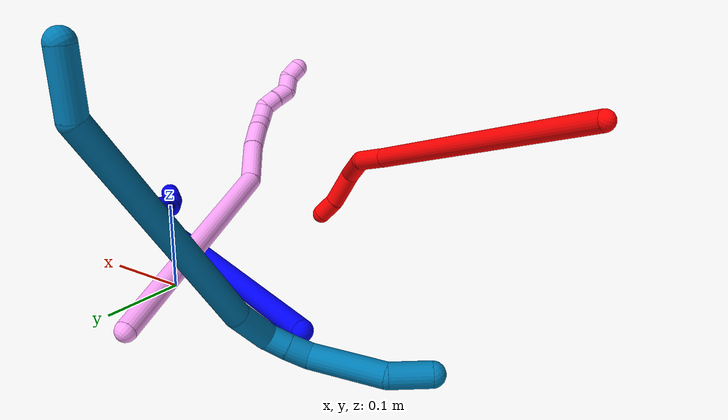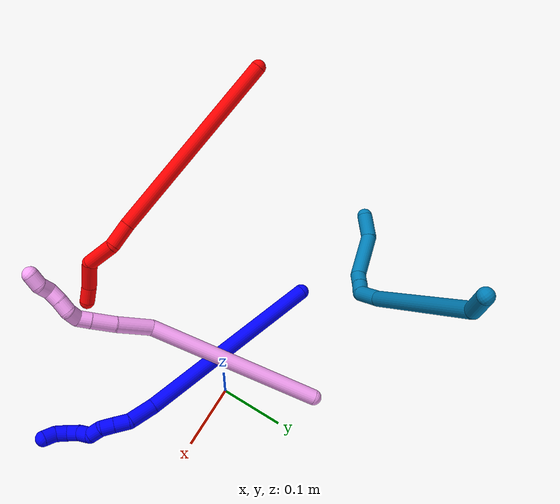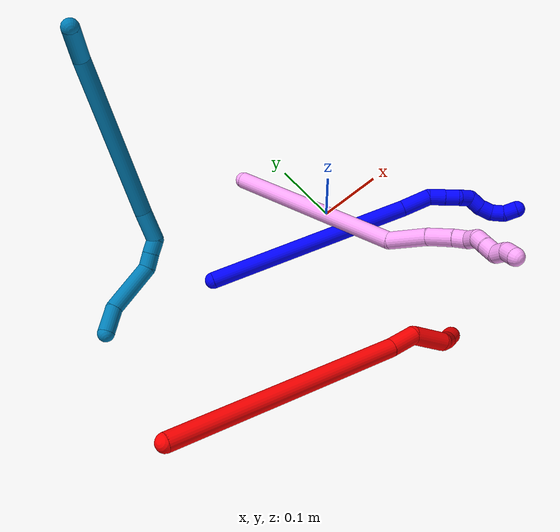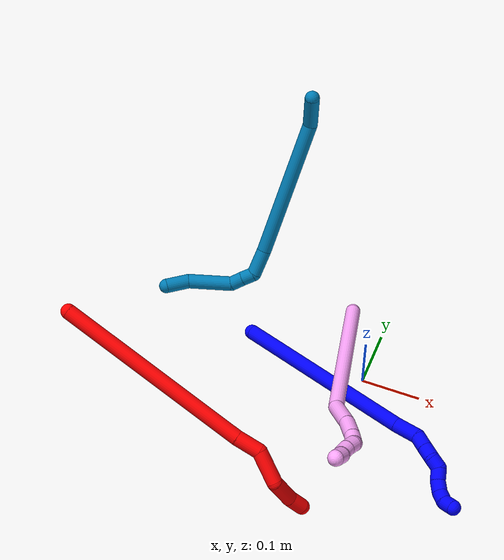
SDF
<sdf version="1.7">
 <world name="default">
  <model name="1">
   <static>0</static>
   <link name="1">
    <collision name="collision-cylinder-e_1_1_4">
     <pose>0.152518 -0.024412 0.013199 1.07513 1.39081 0.923204</pose>
     <geometry><cylinder><radius>0.0125</radius><length>0.310044</length></cylinder></geometry>
     <surface>
      <friction><ode><mu>1.16</mu><mu2>1.16</mu2><slip1>0</slip1><slip2>0</slip2></ode></friction>
      <contact><ode><kp>1e+06</kp><kd>1</kd><max_vel>0</max_vel><min_depth>0.001</min_depth></ode></contact>
     </surface>
    </collision>
    <visual name="visual-cylinder-e_1_1_4">
     <pose>0.152518 -0.024412 0.013199 1.07513 1.39081 0.923204</pose>
     <geometry><cylinder><radius>0.0125</radius><length>0.310044</length></cylinder></geometry>
     <material><ambient>0 0 1 1</ambient></material>
    </visual>
    <collision name="collision-cylinder-e_2_4_5">
     <pose>0.326845 -0.048258 0.029204 -0.19883 1.4403 -0.174573</pose>
     <geometry><cylinder><radius>0.0125</radius><length>0.043993</length></cylinder></geometry>
     <surface>
      <friction><ode><mu>1.16</mu><mu2>1.16</mu2><slip1>0</slip1><slip2>0</slip2></ode></friction>
      <contact><ode><kp>1e+06</kp><kd>1</kd><max_vel>0</max_vel><min_depth>0.001</min_depth></ode></contact>
     </surface>
    </collision>
    <visual name="visual-cylinder-e_2_4_5">
     <pose>0.326845 -0.048258 0.029204 -0.19883 1.4403 -0.174573</pose>
     <geometry><cylinder><radius>0.0125</radius><length>0.043993</length></cylinder></geometry>
     <material><ambient>0 0 1 1</ambient></material>
    </visual>
    <collision name="collision-cylinder-e_3_5_6">
     <pose>0.358941 -0.049687 0.03807 0.317903 1.01564 0.177947</pose>
     <geometry><cylinder><radius>0.0125</radius><length>0.024208</length></cylinder></geometry>
     <surface>
      <friction><ode><mu>1.16</mu><mu2>1.16</mu2><slip1>0</slip1><slip2>0</slip2></ode></friction>
      <contact><ode><kp>1e+06</kp><kd>1</kd><max_vel>0</max_vel><min_depth>0.001</min_depth></ode></contact>
     </surface>
    </collision>
    <visual name="visual-cylinder-e_3_5_6">
     <pose>0.358941 -0.049687 0.03807 0.317903 1.01564 0.177947</pose>
     <geometry><cylinder><radius>0.0125</radius><length>0.024208</length></cylinder></geometry>
     <material><ambient>0 0 1 1</ambient></material>
    </visual>
    <collision name="collision-cylinder-e_4_6_7">
     <pose>0.378259 -0.053431 0.049231 0.330544 1.03253 0.188786</pose>
     <geometry><cylinder><radius>0.0125</radius><length>0.021038</length></cylinder></geometry>
     <surface>
      <friction><ode><mu>1.16</mu><mu2>1.16</mu2><slip1>0</slip1><slip2>0</slip2></ode></friction>
      <contact><ode><kp>1e+06</kp><kd>1</kd><max_vel>0</max_vel><min_depth>0.001</min_depth></ode></contact>
     </surface>
    </collision>
    <visual name="visual-cylinder-e_4_6_7">
     <pose>0.378259 -0.053431 0.049231 0.330544 1.03253 0.188786</pose>
     <geometry><cylinder><radius>0.0125</radius><length>0.021038</length></cylinder></geometry>
     <material><ambient>0 0 1 1</ambient></material>
    </visual>
    <collision name="collision-cylinder-e_5_7_8">
     <pose>0.395497 -0.060514 0.057035 1.10159 0.941165 0.605662</pose>
     <geometry><cylinder><radius>0.0125</radius><length>0.020307</length></cylinder></geometry>
     <surface>
      <friction><ode><mu>1.16</mu><mu2>1.16</mu2><slip1>0</slip1><slip2>0</slip2></ode></friction>
      <contact><ode><kp>1e+06</kp><kd>1</kd><max_vel>0</max_vel><min_depth>0.001</min_depth></ode></contact>
     </surface>
    </collision>
    <visual name="visual-cylinder-e_5_7_8">
     <pose>0.395497 -0.060514 0.057035 1.10159 0.941165 0.605662</pose>
     <geometry><cylinder><radius>0.0125</radius><length>0.020307</length></cylinder></geometry>
     <material><ambient>0 0 1 1</ambient></material>
    </visual>
    <collision name="collision-cylinder-e_6_8_9">
     <pose>0.407021 -0.071061 0.067745 0.57723 0.334154 0.100062</pose>
     <geometry><cylinder><radius>0.0125</radius><length>0.020227</length></cylinder></geometry>
     <surface>
      <friction><ode><mu>1.16</mu><mu2>1.16</mu2><slip1>0</slip1><slip2>0</slip2></ode></friction>
      <contact><ode><kp>1e+06</kp><kd>1</kd><max_vel>0</max_vel><min_depth>0.001</min_depth></ode></contact>
     </surface>
    </collision>
    <visual name="visual-cylinder-e_6_8_9">
     <pose>0.407021 -0.071061 0.067745 0.57723 0.334154 0.100062</pose>
     <geometry><cylinder><radius>0.0125</radius><length>0.020227</length></cylinder></geometry>
     <material><ambient>0 0 1 1</ambient></material>
    </visual>
    <collision name="collision-cylinder-e_7_9_10">
     <pose>0.416218 -0.080391 0.082837 0.526229 0.622373 0.17284</pose>
     <geometry><cylinder><radius>0.0125</radius><length>0.020173</length></cylinder></geometry>
     <surface>
      <friction><ode><mu>1.16</mu><mu2>1.16</mu2><slip1>0</slip1><slip2>0</slip2></ode></friction>
      <contact><ode><kp>1e+06</kp><kd>1</kd><max_vel>0</max_vel><min_depth>0.001</min_depth></ode></contact>
     </surface>
    </collision>
    <visual name="visual-cylinder-e_7_9_10">
     <pose>0.416218 -0.080391 0.082837 0.526229 0.622373 0.17284</pose>
     <geometry><cylinder><radius>0.0125</radius><length>0.020173</length></cylinder></geometry>
     <material><ambient>0 0 1 1</ambient></material>
    </visual>
    <collision name="collision-cylinder-e_8_10_11">
     <pose>0.429927 -0.084499 0.09615 -0.001333 0.898996 -0.000643</pose>
     <geometry><cylinder><radius>0.0125</radius><length>0.020007</length></cylinder></geometry>
     <surface>
      <friction><ode><mu>1.16</mu><mu2>1.16</mu2><slip1>0</slip1><slip2>0</slip2></ode></friction>
      <contact><ode><kp>1e+06</kp><kd>1</kd><max_vel>0</max_vel><min_depth>0.001</min_depth></ode></contact>
     </surface>
    </collision>
    <visual name="visual-cylinder-e_8_10_11">
     <pose>0.429927 -0.084499 0.09615 -0.001333 0.898996 -0.000643</pose>
     <geometry><cylinder><radius>0.0125</radius><length>0.020007</length></cylinder></geometry>
     <material><ambient>0 0 1 1</ambient></material>
    </visual>
    <collision name="collision-cylinder-e_9_11_2">
     <pose>0.447282 -0.082867 0.10496 -0.560971 1.26072 -0.414371</pose>
     <geometry><cylinder><radius>0.0125</radius><length>0.020002</length></cylinder></geometry>
     <surface>
      <friction><ode><mu>1.16</mu><mu2>1.16</mu2><slip1>0</slip1><slip2>0</slip2></ode></friction>
      <contact><ode><kp>1e+06</kp><kd>1</kd><max_vel>0</max_vel><min_depth>0.001</min_depth></ode></contact>
     </surface>
    </collision>
    <visual name="visual-cylinder-e_9_11_2">
     <pose>0.447282 -0.082867 0.10496 -0.560971 1.26072 -0.414371</pose>
     <geometry><cylinder><radius>0.0125</radius><length>0.020002</length></cylinder></geometry>
     <material><ambient>0 0 1 1</ambient></material>
    </visual>
    <collision name="collision-sphere-2">
     <pose>0.456806 -0.081243 0.107544 0 -0 0</pose>
     <geometry><sphere><radius>0.0125</radius></sphere></geometry>
     <surface>
      <friction><ode><mu>1.16</mu><mu2>1.16</mu2><slip1>0</slip1><slip2>0</slip2></ode></friction>
      <contact><ode><kp>1e+06</kp><kd>1</kd><max_vel>0</max_vel><min_depth>0.001</min_depth></ode></contact>
     </surface>
    </collision>
    <visual name="visual-sphere-2">
     <pose>0.456806 -0.081243 0.107544 0 -0 0</pose>
     <geometry><sphere><radius>0.0125</radius></sphere></geometry>
     <material><ambient>0 0 1 1</ambient></material>
    </visual>
    <collision name="collision-sphere-11">
     <pose>0.437757 -0.08449 0.102376 0 -0 0</pose>
     <geometry><sphere><radius>0.0125</radius></sphere></geometry>
     <surface>
      <friction><ode><mu>1.16</mu><mu2>1.16</mu2><slip1>0</slip1><slip2>0</slip2></ode></friction>
      <contact><ode><kp>1e+06</kp><kd>1</kd><max_vel>0</max_vel><min_depth>0.001</min_depth></ode></contact>
     </surface>
    </collision>
    <visual name="visual-sphere-11">
     <pose>0.437757 -0.08449 0.102376 0 -0 0</pose>
     <geometry><sphere><radius>0.0125</radius></sphere></geometry>
     <material><ambient>0 0 1 1</ambient></material>
    </visual>
    <collision name="collision-sphere-10">
     <pose>0.422098 -0.084507 0.089924 0 -0 0</pose>
     <geometry><sphere><radius>0.0125</radius></sphere></geometry>
     <surface>
      <friction><ode><mu>1.16</mu><mu2>1.16</mu2><slip1>0</slip1><slip2>0</slip2></ode></friction>
      <contact><ode><kp>1e+06</kp><kd>1</kd><max_vel>0</max_vel><min_depth>0.001</min_depth></ode></contact>
     </surface>
    </collision>
    <visual name="visual-sphere-10">
     <pose>0.422098 -0.084507 0.089924 0 -0 0</pose>
     <geometry><sphere><radius>0.0125</radius></sphere></geometry>
     <material><ambient>0 0 1 1</ambient></material>
    </visual>
    <collision name="collision-sphere-9">
     <pose>0.410338 -0.076275 0.075751 0 -0 0</pose>
     <geometry><sphere><radius>0.0125</radius></sphere></geometry>
     <surface>
      <friction><ode><mu>1.16</mu><mu2>1.16</mu2><slip1>0</slip1><slip2>0</slip2></ode></friction>
      <contact><ode><kp>1e+06</kp><kd>1</kd><max_vel>0</max_vel><min_depth>0.001</min_depth></ode></contact>
     </surface>
    </collision>
    <visual name="visual-sphere-9">
     <pose>0.410338 -0.076275 0.075751 0 -0 0</pose>
     <geometry><sphere><radius>0.0125</radius></sphere></geometry>
     <material><ambient>0 0 1 1</ambient></material>
    </visual>
    <collision name="collision-sphere-4">
     <pose>0.305036 -0.048824 0.026398 0 -0 0</pose>
     <geometry><sphere><radius>0.0125</radius></sphere></geometry>
     <surface>
      <friction><ode><mu>1.16</mu><mu2>1.16</mu2><slip1>0</slip1><slip2>0</slip2></ode></friction>
      <contact><ode><kp>1e+06</kp><kd>1</kd><max_vel>0</max_vel><min_depth>0.001</min_depth></ode></contact>
     </surface>
    </collision>
    <visual name="visual-sphere-4">
     <pose>0.305036 -0.048824 0.026398 0 -0 0</pose>
     <geometry><sphere><radius>0.0125</radius></sphere></geometry>
     <material><ambient>0 0 1 1</ambient></material>
    </visual>
    <collision name="collision-sphere-1">
     <geometry><sphere><radius>0.0125</radius></sphere></geometry>
     <surface>
      <friction><ode><mu>1.16</mu><mu2>1.16</mu2><slip1>0</slip1><slip2>0</slip2></ode></friction>
      <contact><ode><kp>1e+06</kp><kd>1</kd><max_vel>0</max_vel><min_depth>0.001</min_depth></ode></contact>
     </surface>
    </collision>
    <visual name="visual-sphere-1">
     <geometry><sphere><radius>0.0125</radius></sphere></geometry>
     <material><ambient>0 0 1 1</ambient></material>
    </visual>
    <collision name="collision-sphere-8">
     <pose>0.403704 -0.065847 0.059739 0 -0 0</pose>
     <geometry><sphere><radius>0.0125</radius></sphere></geometry>
     <surface>
      <friction><ode><mu>1.16</mu><mu2>1.16</mu2><slip1>0</slip1><slip2>0</slip2></ode></friction>
      <contact><ode><kp>1e+06</kp><kd>1</kd><max_vel>0</max_vel><min_depth>0.001</min_depth></ode></contact>
     </surface>
    </collision>
    <visual name="visual-sphere-8">
     <pose>0.403704 -0.065847 0.059739 0 -0 0</pose>
     <geometry><sphere><radius>0.0125</radius></sphere></geometry>
     <material><ambient>0 0 1 1</ambient></material>
    </visual>
    <collision name="collision-sphere-5">
     <pose>0.348654 -0.047693 0.03201 0 -0 0</pose>
     <geometry><sphere><radius>0.0125</radius></sphere></geometry>
     <surface>
      <friction><ode><mu>1.16</mu><mu2>1.16</mu2><slip1>0</slip1><slip2>0</slip2></ode></friction>
      <contact><ode><kp>1e+06</kp><kd>1</kd><max_vel>0</max_vel><min_depth>0.001</min_depth></ode></contact>
     </surface>
    </collision>
    <visual name="visual-sphere-5">
     <pose>0.348654 -0.047693 0.03201 0 -0 0</pose>
     <geometry><sphere><radius>0.0125</radius></sphere></geometry>
     <material><ambient>0 0 1 1</ambient></material>
    </visual>
    <collision name="collision-sphere-6">
     <pose>0.369227 -0.051681 0.04413 0 -0 0</pose>
     <geometry><sphere><radius>0.0125</radius></sphere></geometry>
     <surface>
      <friction><ode><mu>1.16</mu><mu2>1.16</mu2><slip1>0</slip1><slip2>0</slip2></ode></friction>
      <contact><ode><kp>1e+06</kp><kd>1</kd><max_vel>0</max_vel><min_depth>0.001</min_depth></ode></contact>
     </surface>
    </collision>
    <visual name="visual-sphere-6">
     <pose>0.369227 -0.051681 0.04413 0 -0 0</pose>
     <geometry><sphere><radius>0.0125</radius></sphere></geometry>
     <material><ambient>0 0 1 1</ambient></material>
    </visual>
    <collision name="collision-sphere-7">
     <pose>0.387291 -0.055182 0.054332 0 -0 0</pose>
     <geometry><sphere><radius>0.0125</radius></sphere></geometry>
     <surface>
      <friction><ode><mu>1.16</mu><mu2>1.16</mu2><slip1>0</slip1><slip2>0</slip2></ode></friction>
      <contact><ode><kp>1e+06</kp><kd>1</kd><max_vel>0</max_vel><min_depth>0.001</min_depth></ode></contact>
     </surface>
    </collision>
    <visual name="visual-sphere-7">
     <pose>0.387291 -0.055182 0.054332 0 -0 0</pose>
     <geometry><sphere><radius>0.0125</radius></sphere></geometry>
     <material><ambient>0 0 1 1</ambient></material>
    </visual>
    <inertial>
     <pose>0.241044 -0.039309 0.031114 0 -0 0</pose>
     <mass>0.5</mass>
     <inertia>
      <ixx>0.00067</ixx>
      <ixy>0</ixy>
      <ixz>0</ixz>
      <iyy>0.002809</iyy>
      <iyz>0</iyz>
      <izz>-0.002069</izz>
     </inertia>
    </inertial>
   </link>
   <pose>-0.208086 0.019272 0.011496 1.53841 -0.190853 -0.232831</pose>
  </model>
  <model name="2">
   <static>0</static>
   <link name="2">
    <collision name="collision-cylinder-e_1_1_4">
     <pose>0.107705 -0.02603 -0.121108 2.92988 0.715691 2.5879</pose>
     <geometry><cylinder><radius>0.0125</radius><length>0.328298</length></cylinder></geometry>
     <surface>
      <friction><ode><mu>1.16</mu><mu2>1.16</mu2><slip1>0</slip1><slip2>0</slip2></ode></friction>
      <contact><ode><kp>1e+06</kp><kd>1</kd><max_vel>0</max_vel><min_depth>0.001</min_depth></ode></contact>
     </surface>
    </collision>
    <visual name="visual-cylinder-e_1_1_4">
     <pose>0.107705 -0.02603 -0.121108 2.92988 0.715691 2.5879</pose>
     <geometry><cylinder><radius>0.0125</radius><length>0.328298</length></cylinder></geometry>
     <material><ambient>1 0 0 1</ambient></material>
    </visual>
    <collision name="collision-cylinder-e_2_4_5">
     <pose>0.229819 -0.053745 -0.256593 3.02493 0.783083 2.86057</pose>
     <geometry><cylinder><radius>0.0125</radius><length>0.040851</length></cylinder></geometry>
     <surface>
      <friction><ode><mu>1.16</mu><mu2>1.16</mu2><slip1>0</slip1><slip2>0</slip2></ode></friction>
      <contact><ode><kp>1e+06</kp><kd>1</kd><max_vel>0</max_vel><min_depth>0.001</min_depth></ode></contact>
     </surface>
    </collision>
    <visual name="visual-cylinder-e_2_4_5">
     <pose>0.229819 -0.053745 -0.256593 3.02493 0.783083 2.86057</pose>
     <geometry><cylinder><radius>0.0125</radius><length>0.040851</length></cylinder></geometry>
     <material><ambient>1 0 0 1</ambient></material>
    </visual>
    <collision name="collision-cylinder-e_3_5_6">
     <pose>0.250804 -0.065386 -0.294907 2.74741 0.248418 1.11755</pose>
     <geometry><cylinder><radius>0.0125</radius><length>0.053489</length></cylinder></geometry>
     <surface>
      <friction><ode><mu>1.16</mu><mu2>1.16</mu2><slip1>0</slip1><slip2>0</slip2></ode></friction>
      <contact><ode><kp>1e+06</kp><kd>1</kd><max_vel>0</max_vel><min_depth>0.001</min_depth></ode></contact>
     </surface>
    </collision>
    <visual name="visual-cylinder-e_3_5_6">
     <pose>0.250804 -0.065386 -0.294907 2.74741 0.248418 1.11755</pose>
     <geometry><cylinder><radius>0.0125</radius><length>0.053489</length></cylinder></geometry>
     <material><ambient>1 0 0 1</ambient></material>
    </visual>
    <collision name="collision-cylinder-e_4_6_7">
     <pose>0.258706 -0.067836 -0.341852 -2.82624 0.054732 -0.340984</pose>
     <geometry><cylinder><radius>0.0125</radius><length>0.048479</length></cylinder></geometry>
     <surface>
      <friction><ode><mu>1.16</mu><mu2>1.16</mu2><slip1>0</slip1><slip2>0</slip2></ode></friction>
      <contact><ode><kp>1e+06</kp><kd>1</kd><max_vel>0</max_vel><min_depth>0.001</min_depth></ode></contact>
     </surface>
    </collision>
    <visual name="visual-cylinder-e_4_6_7">
     <pose>0.258706 -0.067836 -0.341852 -2.82624 0.054732 -0.340984</pose>
     <geometry><cylinder><radius>0.0125</radius><length>0.048479</length></cylinder></geometry>
     <material><ambient>1 0 0 1</ambient></material>
    </visual>
    <collision name="collision-cylinder-e_5_7_2">
     <pose>0.264198 -0.055876 -0.377953 -2.81371 0.292644 -1.4555</pose>
     <geometry><cylinder><radius>0.0125</radius><length>0.028883</length></cylinder></geometry>
     <surface>
      <friction><ode><mu>1.16</mu><mu2>1.16</mu2><slip1>0</slip1><slip2>0</slip2></ode></friction>
      <contact><ode><kp>1e+06</kp><kd>1</kd><max_vel>0</max_vel><min_depth>0.001</min_depth></ode></contact>
     </surface>
    </collision>
    <visual name="visual-cylinder-e_5_7_2">
     <pose>0.264198 -0.055876 -0.377953 -2.81371 0.292644 -1.4555</pose>
     <geometry><cylinder><radius>0.0125</radius><length>0.028883</length></cylinder></geometry>
     <material><ambient>1 0 0 1</ambient></material>
    </visual>
    <collision name="collision-sphere-2">
     <pose>0.268364 -0.051423 -0.391043 0 -0 0</pose>
     <geometry><sphere><radius>0.0125</radius></sphere></geometry>
     <surface>
      <friction><ode><mu>1.16</mu><mu2>1.16</mu2><slip1>0</slip1><slip2>0</slip2></ode></friction>
      <contact><ode><kp>1e+06</kp><kd>1</kd><max_vel>0</max_vel><min_depth>0.001</min_depth></ode></contact>
     </surface>
    </collision>
    <visual name="visual-sphere-2">
     <pose>0.268364 -0.051423 -0.391043 0 -0 0</pose>
     <geometry><sphere><radius>0.0125</radius></sphere></geometry>
     <material><ambient>1 0 0 1</ambient></material>
    </visual>
    <collision name="collision-sphere-7">
     <pose>0.260032 -0.060329 -0.364862 0 -0 0</pose>
     <geometry><sphere><radius>0.0125</radius></sphere></geometry>
     <surface>
      <friction><ode><mu>1.16</mu><mu2>1.16</mu2><slip1>0</slip1><slip2>0</slip2></ode></friction>
      <contact><ode><kp>1e+06</kp><kd>1</kd><max_vel>0</max_vel><min_depth>0.001</min_depth></ode></contact>
     </surface>
    </collision>
    <visual name="visual-sphere-7">
     <pose>0.260032 -0.060329 -0.364862 0 -0 0</pose>
     <geometry><sphere><radius>0.0125</radius></sphere></geometry>
     <material><ambient>1 0 0 1</ambient></material>
    </visual>
    <collision name="collision-sphere-6">
     <pose>0.25738 -0.075342 -0.318842 0 -0 0</pose>
     <geometry><sphere><radius>0.0125</radius></sphere></geometry>
     <surface>
      <friction><ode><mu>1.16</mu><mu2>1.16</mu2><slip1>0</slip1><slip2>0</slip2></ode></friction>
      <contact><ode><kp>1e+06</kp><kd>1</kd><max_vel>0</max_vel><min_depth>0.001</min_depth></ode></contact>
     </surface>
    </collision>
    <visual name="visual-sphere-6">
     <pose>0.25738 -0.075342 -0.318842 0 -0 0</pose>
     <geometry><sphere><radius>0.0125</radius></sphere></geometry>
     <material><ambient>1 0 0 1</ambient></material>
    </visual>
    <collision name="collision-sphere-5">
     <pose>0.244228 -0.05543 -0.270971 0 -0 0</pose>
     <geometry><sphere><radius>0.0125</radius></sphere></geometry>
     <surface>
      <friction><ode><mu>1.16</mu><mu2>1.16</mu2><slip1>0</slip1><slip2>0</slip2></ode></friction>
      <contact><ode><kp>1e+06</kp><kd>1</kd><max_vel>0</max_vel><min_depth>0.001</min_depth></ode></contact>
     </surface>
    </collision>
    <visual name="visual-sphere-5">
     <pose>0.244228 -0.05543 -0.270971 0 -0 0</pose>
     <geometry><sphere><radius>0.0125</radius></sphere></geometry>
     <material><ambient>1 0 0 1</ambient></material>
    </visual>
    <collision name="collision-sphere-1">
     <geometry><sphere><radius>0.0125</radius></sphere></geometry>
     <surface>
      <friction><ode><mu>1.16</mu><mu2>1.16</mu2><slip1>0</slip1><slip2>0</slip2></ode></friction>
      <contact><ode><kp>1e+06</kp><kd>1</kd><max_vel>0</max_vel><min_depth>0.001</min_depth></ode></contact>
     </surface>
    </collision>
    <visual name="visual-sphere-1">
     <geometry><sphere><radius>0.0125</radius></sphere></geometry>
     <material><ambient>1 0 0 1</ambient></material>
    </visual>
    <collision name="collision-sphere-4">
     <pose>0.215409 -0.05206 -0.242215 0 -0 0</pose>
     <geometry><sphere><radius>0.0125</radius></sphere></geometry>
     <surface>
      <friction><ode><mu>1.16</mu><mu2>1.16</mu2><slip1>0</slip1><slip2>0</slip2></ode></friction>
      <contact><ode><kp>1e+06</kp><kd>1</kd><max_vel>0</max_vel><min_depth>0.001</min_depth></ode></contact>
     </surface>
    </collision>
    <visual name="visual-sphere-4">
     <pose>0.215409 -0.05206 -0.242215 0 -0 0</pose>
     <geometry><sphere><radius>0.0125</radius></sphere></geometry>
     <material><ambient>1 0 0 1</ambient></material>
    </visual>
    <inertial>
     <pose>0.156671 -0.038282 -0.18701 0 -0 0</pose>
     <mass>0.5</mass>
     <inertia>
      <ixx>-0.000685</ixx>
      <ixy>0</ixy>
      <ixz>0</ixz>
      <iyy>0.003848</iyy>
      <iyz>0</iyz>
      <izz>-0.001513</izz>
     </inertia>
    </inertial>
   </link>
   <pose>-0.427054 -0.202244 0.222027 -0.260514 -0.454034 0.187476</pose>
  </model>
  <model name="4">
   <static>0</static>
   <link name="4">
    <collision name="collision-cylinder-e_1_1_4">
     <pose>0.005321 -0.041121 0.133983 0.297786 0.037946 0.005693</pose>
     <geometry><cylinder><radius>0.0125</radius><length>0.280504</length></cylinder></geometry>
     <surface>
      <friction><ode><mu>1.16</mu><mu2>1.16</mu2><slip1>0</slip1><slip2>0</slip2></ode></friction>
      <contact><ode><kp>1e+06</kp><kd>1</kd><max_vel>0</max_vel><min_depth>0.001</min_depth></ode></contact>
     </surface>
    </collision>
    <visual name="visual-cylinder-e_1_1_4">
     <pose>0.005321 -0.041121 0.133983 0.297786 0.037946 0.005693</pose>
     <geometry><cylinder><radius>0.0125</radius><length>0.280504</length></cylinder></geometry>
     <material><ambient>1 0.65098 0.996078 1</ambient></material>
    </visual>
    <collision name="collision-cylinder-e_2_4_5">
     <pose>0.024031 -0.092337 0.292328 0.392811 0.469819 0.095167</pose>
     <geometry><cylinder><radius>0.0125</radius><length>0.059152</length></cylinder></geometry>
     <surface>
      <friction><ode><mu>1.16</mu><mu2>1.16</mu2><slip1>0</slip1><slip2>0</slip2></ode></friction>
      <contact><ode><kp>1e+06</kp><kd>1</kd><max_vel>0</max_vel><min_depth>0.001</min_depth></ode></contact>
     </surface>
    </collision>
    <visual name="visual-cylinder-e_2_4_5">
     <pose>0.024031 -0.092337 0.292328 0.392811 0.469819 0.095167</pose>
     <geometry><cylinder><radius>0.0125</radius><length>0.059152</length></cylinder></geometry>
     <material><ambient>1 0.65098 0.996078 1</ambient></material>
    </visual>
    <collision name="collision-cylinder-e_3_5_6">
     <pose>0.043731 -0.109633 0.333301 0.409108 0.335378 0.070207</pose>
     <geometry><cylinder><radius>0.0125</radius><length>0.038344</length></cylinder></geometry>
     <surface>
      <friction><ode><mu>1.16</mu><mu2>1.16</mu2><slip1>0</slip1><slip2>0</slip2></ode></friction>
      <contact><ode><kp>1e+06</kp><kd>1</kd><max_vel>0</max_vel><min_depth>0.001</min_depth></ode></contact>
     </surface>
    </collision>
    <visual name="visual-cylinder-e_3_5_6">
     <pose>0.043731 -0.109633 0.333301 0.409108 0.335378 0.070207</pose>
     <geometry><cylinder><radius>0.0125</radius><length>0.038344</length></cylinder></geometry>
     <material><ambient>1 0.65098 0.996078 1</ambient></material>
    </visual>
    <collision name="collision-cylinder-e_4_6_7">
     <pose>0.052631 -0.120984 0.358827 0.435575 0.257447 0.057273</pose>
     <geometry><cylinder><radius>0.0125</radius><length>0.02034</length></cylinder></geometry>
     <surface>
      <friction><ode><mu>1.16</mu><mu2>1.16</mu2><slip1>0</slip1><slip2>0</slip2></ode></friction>
      <contact><ode><kp>1e+06</kp><kd>1</kd><max_vel>0</max_vel><min_depth>0.001</min_depth></ode></contact>
     </surface>
    </collision>
    <visual name="visual-cylinder-e_4_6_7">
     <pose>0.052631 -0.120984 0.358827 0.435575 0.257447 0.057273</pose>
     <geometry><cylinder><radius>0.0125</radius><length>0.02034</length></cylinder></geometry>
     <material><ambient>1 0.65098 0.996078 1</ambient></material>
    </visual>
    <collision name="collision-cylinder-e_5_7_8">
     <pose>0.05947 -0.122897 0.376728 -0.243962 0.430401 -0.05358</pose>
     <geometry><cylinder><radius>0.0125</radius><length>0.020374</length></cylinder></geometry>
     <surface>
      <friction><ode><mu>1.16</mu><mu2>1.16</mu2><slip1>0</slip1><slip2>0</slip2></ode></friction>
      <contact><ode><kp>1e+06</kp><kd>1</kd><max_vel>0</max_vel><min_depth>0.001</min_depth></ode></contact>
     </surface>
    </collision>
    <visual name="visual-cylinder-e_5_7_8">
     <pose>0.05947 -0.122897 0.376728 -0.243962 0.430401 -0.05358</pose>
     <geometry><cylinder><radius>0.0125</radius><length>0.020374</length></cylinder></geometry>
     <material><ambient>1 0.65098 0.996078 1</ambient></material>
    </visual>
    <collision name="collision-cylinder-e_6_8_9">
     <pose>0.062271 -0.119116 0.395634 -0.15451 -0.143415 0.011121</pose>
     <geometry><cylinder><radius>0.0125</radius><length>0.020293</length></cylinder></geometry>
     <surface>
      <friction><ode><mu>1.16</mu><mu2>1.16</mu2><slip1>0</slip1><slip2>0</slip2></ode></friction>
      <contact><ode><kp>1e+06</kp><kd>1</kd><max_vel>0</max_vel><min_depth>0.001</min_depth></ode></contact>
     </surface>
    </collision>
    <visual name="visual-cylinder-e_6_8_9">
     <pose>0.062271 -0.119116 0.395634 -0.15451 -0.143415 0.011121</pose>
     <geometry><cylinder><radius>0.0125</radius><length>0.020293</length></cylinder></geometry>
     <material><ambient>1 0.65098 0.996078 1</ambient></material>
    </visual>
    <collision name="collision-cylinder-e_7_9_10">
     <pose>0.059004 -0.117398 0.415735 -0.016954 -0.176554 0.001501</pose>
     <geometry><cylinder><radius>0.0125</radius><length>0.020681</length></cylinder></geometry>
     <surface>
      <friction><ode><mu>1.16</mu><mu2>1.16</mu2><slip1>0</slip1><slip2>0</slip2></ode></friction>
      <contact><ode><kp>1e+06</kp><kd>1</kd><max_vel>0</max_vel><min_depth>0.001</min_depth></ode></contact>
     </surface>
    </collision>
    <visual name="visual-cylinder-e_7_9_10">
     <pose>0.059004 -0.117398 0.415735 -0.016954 -0.176554 0.001501</pose>
     <geometry><cylinder><radius>0.0125</radius><length>0.020681</length></cylinder></geometry>
     <material><ambient>1 0.65098 0.996078 1</ambient></material>
    </visual>
    <collision name="collision-cylinder-e_8_10_11">
     <pose>0.062316 -0.115971 0.434441 -0.145981 0.536677 -0.040206</pose>
     <geometry><cylinder><radius>0.0125</radius><length>0.02006</length></cylinder></geometry>
     <surface>
      <friction><ode><mu>1.16</mu><mu2>1.16</mu2><slip1>0</slip1><slip2>0</slip2></ode></friction>
      <contact><ode><kp>1e+06</kp><kd>1</kd><max_vel>0</max_vel><min_depth>0.001</min_depth></ode></contact>
     </surface>
    </collision>
    <visual name="visual-cylinder-e_8_10_11">
     <pose>0.062316 -0.115971 0.434441 -0.145981 0.536677 -0.040206</pose>
     <geometry><cylinder><radius>0.0125</radius><length>0.02006</length></cylinder></geometry>
     <material><ambient>1 0.65098 0.996078 1</ambient></material>
    </visual>
    <collision name="collision-cylinder-e_9_11_2">
     <pose>0.067523 -0.11239 0.452824 -0.231956 0.00771 -0.000898</pose>
     <geometry><cylinder><radius>0.0125</radius><length>0.020252</length></cylinder></geometry>
     <surface>
      <friction><ode><mu>1.16</mu><mu2>1.16</mu2><slip1>0</slip1><slip2>0</slip2></ode></friction>
      <contact><ode><kp>1e+06</kp><kd>1</kd><max_vel>0</max_vel><min_depth>0.001</min_depth></ode></contact>
     </surface>
    </collision>
    <visual name="visual-cylinder-e_9_11_2">
     <pose>0.067523 -0.11239 0.452824 -0.231956 0.00771 -0.000898</pose>
     <geometry><cylinder><radius>0.0125</radius><length>0.020252</length></cylinder></geometry>
     <material><ambient>1 0.65098 0.996078 1</ambient></material>
    </visual>
    <collision name="collision-sphere-2">
     <pose>0.067601 -0.110062 0.462679 0 -0 0</pose>
     <geometry><sphere><radius>0.0125</radius></sphere></geometry>
     <surface>
      <friction><ode><mu>1.16</mu><mu2>1.16</mu2><slip1>0</slip1><slip2>0</slip2></ode></friction>
      <contact><ode><kp>1e+06</kp><kd>1</kd><max_vel>0</max_vel><min_depth>0.001</min_depth></ode></contact>
     </surface>
    </collision>
    <visual name="visual-sphere-2">
     <pose>0.067601 -0.110062 0.462679 0 -0 0</pose>
     <geometry><sphere><radius>0.0125</radius></sphere></geometry>
     <material><ambient>1 0.65098 0.996078 1</ambient></material>
    </visual>
    <collision name="collision-sphere-11">
     <pose>0.067445 -0.114717 0.44297 0 -0 0</pose>
     <geometry><sphere><radius>0.0125</radius></sphere></geometry>
     <surface>
      <friction><ode><mu>1.16</mu><mu2>1.16</mu2><slip1>0</slip1><slip2>0</slip2></ode></friction>
      <contact><ode><kp>1e+06</kp><kd>1</kd><max_vel>0</max_vel><min_depth>0.001</min_depth></ode></contact>
     </surface>
    </collision>
    <visual name="visual-sphere-11">
     <pose>0.067445 -0.114717 0.44297 0 -0 0</pose>
     <geometry><sphere><radius>0.0125</radius></sphere></geometry>
     <material><ambient>1 0.65098 0.996078 1</ambient></material>
    </visual>
    <collision name="collision-sphere-10">
     <pose>0.057188 -0.117225 0.425913 0 -0 0</pose>
     <geometry><sphere><radius>0.0125</radius></sphere></geometry>
     <surface>
      <friction><ode><mu>1.16</mu><mu2>1.16</mu2><slip1>0</slip1><slip2>0</slip2></ode></friction>
      <contact><ode><kp>1e+06</kp><kd>1</kd><max_vel>0</max_vel><min_depth>0.001</min_depth></ode></contact>
     </surface>
    </collision>
    <visual name="visual-sphere-10">
     <pose>0.057188 -0.117225 0.425913 0 -0 0</pose>
     <geometry><sphere><radius>0.0125</radius></sphere></geometry>
     <material><ambient>1 0.65098 0.996078 1</ambient></material>
    </visual>
    <collision name="collision-sphere-9">
     <pose>0.06082 -0.11757 0.405557 0 -0 0</pose>
     <geometry><sphere><radius>0.0125</radius></sphere></geometry>
     <surface>
      <friction><ode><mu>1.16</mu><mu2>1.16</mu2><slip1>0</slip1><slip2>0</slip2></ode></friction>
      <contact><ode><kp>1e+06</kp><kd>1</kd><max_vel>0</max_vel><min_depth>0.001</min_depth></ode></contact>
     </surface>
    </collision>
    <visual name="visual-sphere-9">
     <pose>0.06082 -0.11757 0.405557 0 -0 0</pose>
     <geometry><sphere><radius>0.0125</radius></sphere></geometry>
     <material><ambient>1 0.65098 0.996078 1</ambient></material>
    </visual>
    <collision name="collision-sphere-4">
     <pose>0.010642 -0.082242 0.267965 0 -0 0</pose>
     <geometry><sphere><radius>0.0125</radius></sphere></geometry>
     <surface>
      <friction><ode><mu>1.16</mu><mu2>1.16</mu2><slip1>0</slip1><slip2>0</slip2></ode></friction>
      <contact><ode><kp>1e+06</kp><kd>1</kd><max_vel>0</max_vel><min_depth>0.001</min_depth></ode></contact>
     </surface>
    </collision>
    <visual name="visual-sphere-4">
     <pose>0.010642 -0.082242 0.267965 0 -0 0</pose>
     <geometry><sphere><radius>0.0125</radius></sphere></geometry>
     <material><ambient>1 0.65098 0.996078 1</ambient></material>
    </visual>
    <collision name="collision-sphere-1">
     <geometry><sphere><radius>0.0125</radius></sphere></geometry>
     <surface>
      <friction><ode><mu>1.16</mu><mu2>1.16</mu2><slip1>0</slip1><slip2>0</slip2></ode></friction>
      <contact><ode><kp>1e+06</kp><kd>1</kd><max_vel>0</max_vel><min_depth>0.001</min_depth></ode></contact>
     </surface>
    </collision>
    <visual name="visual-sphere-1">
     <geometry><sphere><radius>0.0125</radius></sphere></geometry>
     <material><ambient>1 0.65098 0.996078 1</ambient></material>
    </visual>
    <collision name="collision-sphere-8">
     <pose>0.063721 -0.120661 0.385711 0 -0 0</pose>
     <geometry><sphere><radius>0.0125</radius></sphere></geometry>
     <surface>
      <friction><ode><mu>1.16</mu><mu2>1.16</mu2><slip1>0</slip1><slip2>0</slip2></ode></friction>
      <contact><ode><kp>1e+06</kp><kd>1</kd><max_vel>0</max_vel><min_depth>0.001</min_depth></ode></contact>
     </surface>
    </collision>
    <visual name="visual-sphere-8">
     <pose>0.063721 -0.120661 0.385711 0 -0 0</pose>
     <geometry><sphere><radius>0.0125</radius></sphere></geometry>
     <material><ambient>1 0.65098 0.996078 1</ambient></material>
    </visual>
    <collision name="collision-sphere-5">
     <pose>0.037421 -0.102431 0.316691 0 -0 0</pose>
     <geometry><sphere><radius>0.0125</radius></sphere></geometry>
     <surface>
      <friction><ode><mu>1.16</mu><mu2>1.16</mu2><slip1>0</slip1><slip2>0</slip2></ode></friction>
      <contact><ode><kp>1e+06</kp><kd>1</kd><max_vel>0</max_vel><min_depth>0.001</min_depth></ode></contact>
     </surface>
    </collision>
    <visual name="visual-sphere-5">
     <pose>0.037421 -0.102431 0.316691 0 -0 0</pose>
     <geometry><sphere><radius>0.0125</radius></sphere></geometry>
     <material><ambient>1 0.65098 0.996078 1</ambient></material>
    </visual>
    <collision name="collision-sphere-6">
     <pose>0.050041 -0.116834 0.349911 0 -0 0</pose>
     <geometry><sphere><radius>0.0125</radius></sphere></geometry>
     <surface>
      <friction><ode><mu>1.16</mu><mu2>1.16</mu2><slip1>0</slip1><slip2>0</slip2></ode></friction>
      <contact><ode><kp>1e+06</kp><kd>1</kd><max_vel>0</max_vel><min_depth>0.001</min_depth></ode></contact>
     </surface>
    </collision>
    <visual name="visual-sphere-6">
     <pose>0.050041 -0.116834 0.349911 0 -0 0</pose>
     <geometry><sphere><radius>0.0125</radius></sphere></geometry>
     <material><ambient>1 0.65098 0.996078 1</ambient></material>
    </visual>
    <collision name="collision-sphere-7">
     <pose>0.05522 -0.125134 0.367744 0 -0 0</pose>
     <geometry><sphere><radius>0.0125</radius></sphere></geometry>
     <surface>
      <friction><ode><mu>1.16</mu><mu2>1.16</mu2><slip1>0</slip1><slip2>0</slip2></ode></friction>
      <contact><ode><kp>1e+06</kp><kd>1</kd><max_vel>0</max_vel><min_depth>0.001</min_depth></ode></contact>
     </surface>
    </collision>
    <visual name="visual-sphere-7">
     <pose>0.05522 -0.125134 0.367744 0 -0 0</pose>
     <geometry><sphere><radius>0.0125</radius></sphere></geometry>
     <material><ambient>1 0.65098 0.996078 1</ambient></material>
    </visual>
    <inertial>
     <pose>0.023949 -0.071225 0.234281 0 -0 0</pose>
     <mass>0.5</mass>
     <inertia>
      <ixx>0.001898</ixx>
      <ixy>0</ixy>
      <ixz>0</ixz>
      <iyy>0.001806</iyy>
      <iyz>0</iyz>
      <izz>0.000505</izz>
     </inertia>
    </inertial>
   </link>
   <pose>-0.062377 0.126912 0.011901 0.891843 -0.714346 0.452745</pose>
  </model>
  <model name="9">
   <static>0</static>
   <link name="9">
    <collision name="collision-cylinder-e_1_1_4">
     <pose>-0.025578 -0.010032 0.007749 0.913076 -1.11069 -0.59161</pose>
     <geometry><cylinder><radius>0.0125</radius><length>0.057093</length></cylinder></geometry>
     <surface>
      <friction><ode><mu>1.16</mu><mu2>1.16</mu2><slip1>0</slip1><slip2>0</slip2></ode></friction>
      <contact><ode><kp>1e+06</kp><kd>1</kd><max_vel>0</max_vel><min_depth>0.001</min_depth></ode></contact>
     </surface>
    </collision>
    <visual name="visual-cylinder-e_1_1_4">
     <pose>-0.025578 -0.010032 0.007749 0.913076 -1.11069 -0.59161</pose>
     <geometry><cylinder><radius>0.0125</radius><length>0.057093</length></cylinder></geometry>
     <material><ambient>0 0.490196 0.709804 1</ambient></material>
    </visual>
    <collision name="collision-cylinder-e_2_4_5">
     <pose>-0.15986 -0.057888 -0.014138 2.2354 -1.15458 -1.85773</pose>
     <geometry><cylinder><radius>0.0125</radius><length>0.237703</length></cylinder></geometry>
     <surface>
      <friction><ode><mu>1.16</mu><mu2>1.16</mu2><slip1>0</slip1><slip2>0</slip2></ode></friction>
      <contact><ode><kp>1e+06</kp><kd>1</kd><max_vel>0</max_vel><min_depth>0.001</min_depth></ode></contact>
     </surface>
    </collision>
    <visual name="visual-cylinder-e_2_4_5">
     <pose>-0.15986 -0.057888 -0.014138 2.2354 -1.15458 -1.85773</pose>
     <geometry><cylinder><radius>0.0125</radius><length>0.237703</length></cylinder></geometry>
     <material><ambient>0 0.490196 0.709804 1</ambient></material>
    </visual>
    <collision name="collision-cylinder-e_3_5_6">
     <pose>-0.28806 -0.101767 -0.053269 2.57393 -1.04692 -2.20566</pose>
     <geometry><cylinder><radius>0.0125</radius><length>0.045029</length></cylinder></geometry>
     <surface>
      <friction><ode><mu>1.16</mu><mu2>1.16</mu2><slip1>0</slip1><slip2>0</slip2></ode></friction>
      <contact><ode><kp>1e+06</kp><kd>1</kd><max_vel>0</max_vel><min_depth>0.001</min_depth></ode></contact>
     </surface>
    </collision>
    <visual name="visual-cylinder-e_3_5_6">
     <pose>-0.28806 -0.101767 -0.053269 2.57393 -1.04692 -2.20566</pose>
     <geometry><cylinder><radius>0.0125</radius><length>0.045029</length></cylinder></geometry>
     <material><ambient>0 0.490196 0.709804 1</ambient></material>
    </visual>
    <collision name="collision-cylinder-e_4_6_7">
     <pose>-0.311411 -0.116382 -0.067983 2.11823 -0.367221 -0.638728</pose>
     <geometry><cylinder><radius>0.0125</radius><length>0.02148</length></cylinder></geometry>
     <surface>
      <friction><ode><mu>1.16</mu><mu2>1.16</mu2><slip1>0</slip1><slip2>0</slip2></ode></friction>
      <contact><ode><kp>1e+06</kp><kd>1</kd><max_vel>0</max_vel><min_depth>0.001</min_depth></ode></contact>
     </surface>
    </collision>
    <visual name="visual-cylinder-e_4_6_7">
     <pose>-0.311411 -0.116382 -0.067983 2.11823 -0.367221 -0.638728</pose>
     <geometry><cylinder><radius>0.0125</radius><length>0.02148</length></cylinder></geometry>
     <material><ambient>0 0.490196 0.709804 1</ambient></material>
    </visual>
    <collision name="collision-cylinder-e_5_7_8">
     <pose>-0.319372 -0.133281 -0.079266 2.19961 -0.378864 -0.720209</pose>
     <geometry><cylinder><radius>0.0125</radius><length>0.022199</length></cylinder></geometry>
     <surface>
      <friction><ode><mu>1.16</mu><mu2>1.16</mu2><slip1>0</slip1><slip2>0</slip2></ode></friction>
      <contact><ode><kp>1e+06</kp><kd>1</kd><max_vel>0</max_vel><min_depth>0.001</min_depth></ode></contact>
     </surface>
    </collision>
    <visual name="visual-cylinder-e_5_7_8">
     <pose>-0.319372 -0.133281 -0.079266 2.19961 -0.378864 -0.720209</pose>
     <geometry><cylinder><radius>0.0125</radius><length>0.022199</length></cylinder></geometry>
     <material><ambient>0 0.490196 0.709804 1</ambient></material>
    </visual>
    <collision name="collision-cylinder-e_6_8_9">
     <pose>-0.319911 -0.174498 -0.104067 2.08876 0.09398 0.161492</pose>
     <geometry><cylinder><radius>0.0125</radius><length>0.076017</length></cylinder></geometry>
     <surface>
      <friction><ode><mu>1.16</mu><mu2>1.16</mu2><slip1>0</slip1><slip2>0</slip2></ode></friction>
      <contact><ode><kp>1e+06</kp><kd>1</kd><max_vel>0</max_vel><min_depth>0.001</min_depth></ode></contact>
     </surface>
    </collision>
    <visual name="visual-cylinder-e_6_8_9">
     <pose>-0.319911 -0.174498 -0.104067 2.08876 0.09398 0.161492</pose>
     <geometry><cylinder><radius>0.0125</radius><length>0.076017</length></cylinder></geometry>
     <material><ambient>0 0.490196 0.709804 1</ambient></material>
    </visual>
    <collision name="collision-cylinder-e_7_9_2">
     <pose>-0.317166 -0.21962 -0.138897 2.49121 -0.040615 -0.120332</pose>
     <geometry><cylinder><radius>0.0125</radius><length>0.040479</length></cylinder></geometry>
     <surface>
      <friction><ode><mu>1.16</mu><mu2>1.16</mu2><slip1>0</slip1><slip2>0</slip2></ode></friction>
      <contact><ode><kp>1e+06</kp><kd>1</kd><max_vel>0</max_vel><min_depth>0.001</min_depth></ode></contact>
     </surface>
    </collision>
    <visual name="visual-cylinder-e_7_9_2">
     <pose>-0.317166 -0.21962 -0.138897 2.49121 -0.040615 -0.120332</pose>
     <geometry><cylinder><radius>0.0125</radius><length>0.040479</length></cylinder></geometry>
     <material><ambient>0 0.490196 0.709804 1</ambient></material>
    </visual>
    <collision name="collision-sphere-2">
     <pose>-0.317988 -0.231865 -0.154991 0 -0 0</pose>
     <geometry><sphere><radius>0.0125</radius></sphere></geometry>
     <surface>
      <friction><ode><mu>1.16</mu><mu2>1.16</mu2><slip1>0</slip1><slip2>0</slip2></ode></friction>
      <contact><ode><kp>1e+06</kp><kd>1</kd><max_vel>0</max_vel><min_depth>0.001</min_depth></ode></contact>
     </surface>
    </collision>
    <visual name="visual-sphere-2">
     <pose>-0.317988 -0.231865 -0.154991 0 -0 0</pose>
     <geometry><sphere><radius>0.0125</radius></sphere></geometry>
     <material><ambient>0 0.490196 0.709804 1</ambient></material>
    </visual>
    <collision name="collision-sphere-9">
     <pose>-0.316344 -0.207375 -0.122803 0 -0 0</pose>
     <geometry><sphere><radius>0.0125</radius></sphere></geometry>
     <surface>
      <friction><ode><mu>1.16</mu><mu2>1.16</mu2><slip1>0</slip1><slip2>0</slip2></ode></friction>
      <contact><ode><kp>1e+06</kp><kd>1</kd><max_vel>0</max_vel><min_depth>0.001</min_depth></ode></contact>
     </surface>
    </collision>
    <visual name="visual-sphere-9">
     <pose>-0.316344 -0.207375 -0.122803 0 -0 0</pose>
     <geometry><sphere><radius>0.0125</radius></sphere></geometry>
     <material><ambient>0 0.490196 0.709804 1</ambient></material>
    </visual>
    <collision name="collision-sphere-4">
     <pose>-0.051155 -0.020063 0.015498 0 -0 0</pose>
     <geometry><sphere><radius>0.0125</radius></sphere></geometry>
     <surface>
      <friction><ode><mu>1.16</mu><mu2>1.16</mu2><slip1>0</slip1><slip2>0</slip2></ode></friction>
      <contact><ode><kp>1e+06</kp><kd>1</kd><max_vel>0</max_vel><min_depth>0.001</min_depth></ode></contact>
     </surface>
    </collision>
    <visual name="visual-sphere-4">
     <pose>-0.051155 -0.020063 0.015498 0 -0 0</pose>
     <geometry><sphere><radius>0.0125</radius></sphere></geometry>
     <material><ambient>0 0.490196 0.709804 1</ambient></material>
    </visual>
    <collision name="collision-sphere-1">
     <geometry><sphere><radius>0.0125</radius></sphere></geometry>
     <surface>
      <friction><ode><mu>1.16</mu><mu2>1.16</mu2><slip1>0</slip1><slip2>0</slip2></ode></friction>
      <contact><ode><kp>1e+06</kp><kd>1</kd><max_vel>0</max_vel><min_depth>0.001</min_depth></ode></contact>
     </surface>
    </collision>
    <visual name="visual-sphere-1">
     <geometry><sphere><radius>0.0125</radius></sphere></geometry>
     <material><ambient>0 0.490196 0.709804 1</ambient></material>
    </visual>
    <collision name="collision-sphere-8">
     <pose>-0.323478 -0.141621 -0.085332 0 -0 0</pose>
     <geometry><sphere><radius>0.0125</radius></sphere></geometry>
     <surface>
      <friction><ode><mu>1.16</mu><mu2>1.16</mu2><slip1>0</slip1><slip2>0</slip2></ode></friction>
      <contact><ode><kp>1e+06</kp><kd>1</kd><max_vel>0</max_vel><min_depth>0.001</min_depth></ode></contact>
     </surface>
    </collision>
    <visual name="visual-sphere-8">
     <pose>-0.323478 -0.141621 -0.085332 0 -0 0</pose>
     <geometry><sphere><radius>0.0125</radius></sphere></geometry>
     <material><ambient>0 0.490196 0.709804 1</ambient></material>
    </visual>
    <collision name="collision-sphere-5">
     <pose>-0.268565 -0.095712 -0.043773 0 -0 0</pose>
     <geometry><sphere><radius>0.0125</radius></sphere></geometry>
     <surface>
      <friction><ode><mu>1.16</mu><mu2>1.16</mu2><slip1>0</slip1><slip2>0</slip2></ode></friction>
      <contact><ode><kp>1e+06</kp><kd>1</kd><max_vel>0</max_vel><min_depth>0.001</min_depth></ode></contact>
     </surface>
    </collision>
    <visual name="visual-sphere-5">
     <pose>-0.268565 -0.095712 -0.043773 0 -0 0</pose>
     <geometry><sphere><radius>0.0125</radius></sphere></geometry>
     <material><ambient>0 0.490196 0.709804 1</ambient></material>
    </visual>
    <collision name="collision-sphere-6">
     <pose>-0.307555 -0.107823 -0.062765 0 -0 0</pose>
     <geometry><sphere><radius>0.0125</radius></sphere></geometry>
     <surface>
      <friction><ode><mu>1.16</mu><mu2>1.16</mu2><slip1>0</slip1><slip2>0</slip2></ode></friction>
      <contact><ode><kp>1e+06</kp><kd>1</kd><max_vel>0</max_vel><min_depth>0.001</min_depth></ode></contact>
     </surface>
    </collision>
    <visual name="visual-sphere-6">
     <pose>-0.307555 -0.107823 -0.062765 0 -0 0</pose>
     <geometry><sphere><radius>0.0125</radius></sphere></geometry>
     <material><ambient>0 0.490196 0.709804 1</ambient></material>
    </visual>
    <collision name="collision-sphere-7">
     <pose>-0.315267 -0.124941 -0.0732 0 -0 0</pose>
     <geometry><sphere><radius>0.0125</radius></sphere></geometry>
     <surface>
      <friction><ode><mu>1.16</mu><mu2>1.16</mu2><slip1>0</slip1><slip2>0</slip2></ode></friction>
      <contact><ode><kp>1e+06</kp><kd>1</kd><max_vel>0</max_vel><min_depth>0.001</min_depth></ode></contact>
     </surface>
    </collision>
    <visual name="visual-sphere-7">
     <pose>-0.315267 -0.124941 -0.0732 0 -0 0</pose>
     <geometry><sphere><radius>0.0125</radius></sphere></geometry>
     <material><ambient>0 0.490196 0.709804 1</ambient></material>
    </visual>
    <inertial>
     <pose>-0.206734 -0.093057 -0.04414 0 -0 0</pose>
     <mass>0.5</mass>
     <inertia>
      <ixx>-0.000544</ixx>
      <ixy>0</ixy>
      <ixz>0</ixz>
      <iyy>0.000515</iyy>
      <iyz>0</iyz>
      <izz>0.001451</izz>
     </inertia>
    </inertial>
   </link>
   <pose>-0.202604 0.272782 0.338936 2.32349 -1.06363 2.13163</pose>
  </model>
 </world>
</sdf>
